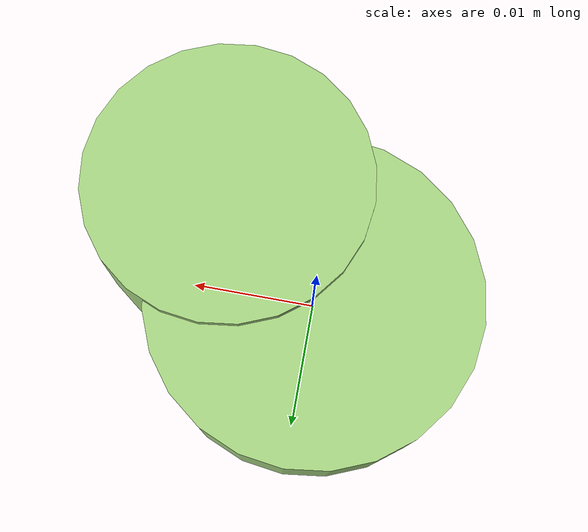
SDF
<?xml version="1.0" ?>
<!-- |    This document was autogenerated by xmacro from data/veggie_template/veggie_base.sdf.xacro  | -->
<!-- |    EDITING THIS FILE BY HAND IS NOT RECOMMENDED                                               | -->
<sdf version="1.8">
	<!-- Parameters -->
	<!-- Base -->
	<!-- Joint 0 -->
	<!-- Link 1 -->
	<!-- Joint 1 -->
	<!-- Link 2 -->
	<!-- Primitives -->
	<!-- All dimensions are half -->
	<!-- Object -->
	<model name="veggie">
		<!-- link0 -->
		<link name="link0">
			<inertial>
				<mass>0.004769500308477107</mass>
				<inertia>
					<ixx>2.491044369606833e-07</ixx>
					<ixy>0</ixy>
					<ixz>0</ixz>
					<iyy>2.491044369606833e-07</iyy>
					<iyz>0</iyz>
					<izz>4.4577373304957116e-07</izz>
				</inertia>
			</inertial>
			<visual name="link0_visual">
				<pose>0 0 0 0 0 0</pose>
				<geometry>
					<cylinder>
						<radius>0.013672117886914265</radius>
						<length>0.008121764718412316</length>
					</cylinder>
				</geometry>
				<material>
					<ambient>0.659 0.839 0.514 1</ambient>
					<diffuse>0.659 0.839 0.514 1</diffuse>
					<specular>0 0 0 0</specular>
					<emissive>0 0 0 1</emissive>
				</material>
			</visual>
			<collision name="link0_collision">
				<pose>0 0 0 0 0 0 </pose>
				<geometry>
					<cylinder>
						<radius>0.013672117886914265</radius>
						<length>0.008121764718412316</length>
					</cylinder>
				</geometry>
			</collision>
		</link>
		<!-- link1 -->
		<joint name="joint0" type="fixed">
			<pose relative_to="link0">0.008563996414187057 -0.008195627106872903 0.0007239824584672528 0.0 0.0 0.0</pose>
			<parent>link0</parent>
			<child>link1</child>
		</joint>
		<link name="link1">
			<pose relative_to="joint0">0 0 0 0 0 0</pose>
			<inertial>
				<mass>0.0037410772123648707</mass>
				<inertia>
					<ixx>1.5842706639065482e-07</ixx>
					<ixy>0</ixy>
					<ixz>0</ixz>
					<iyy>1.5842706639065482e-07</iyy>
					<iyz>0</iyz>
					<izz>2.7634312970760896e-07</izz>
				</inertia>
			</inertial>
			<visual name="link1_visual">
				<pose>0 0 0 0 0 0</pose>
				<geometry>
					<cylinder>
						<radius>0.012154609147095345</radius>
						<length>0.008060533507384756</length>
					</cylinder>
				</geometry>
				<material>
					<ambient>0.659 0.839 0.514 1</ambient>
					<diffuse>0.659 0.839 0.514 1</diffuse>
					<specular>0 0 0 0</specular>
					<emissive>0 0 0 1</emissive>
				</material>
			</visual>
			<collision name="link1_collision">
				<pose>0 0 0 0 0 0 </pose>
				<geometry>
					<cylinder>
						<radius>0.012154609147095345</radius>
						<length>0.008060533507384756</length>
					</cylinder>
				</geometry>
			</collision>
		</link>
		<!-- link2 -->
	</model>
</sdf>
